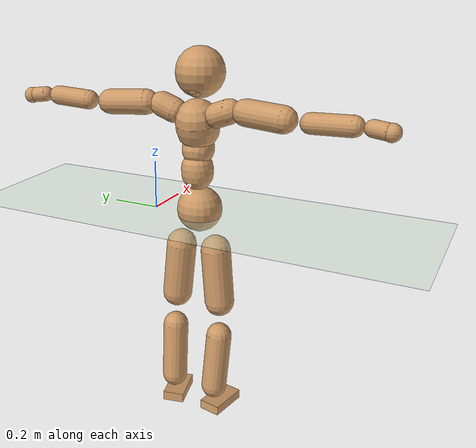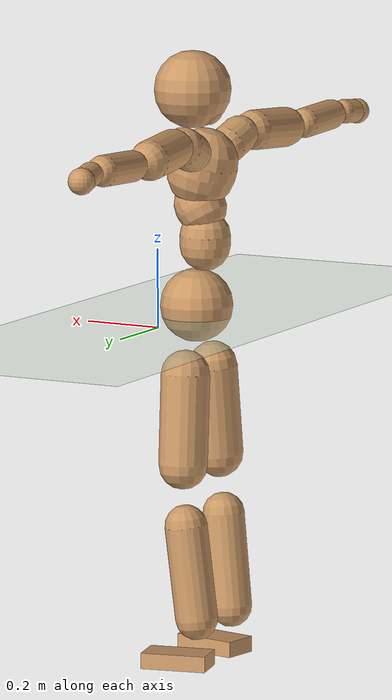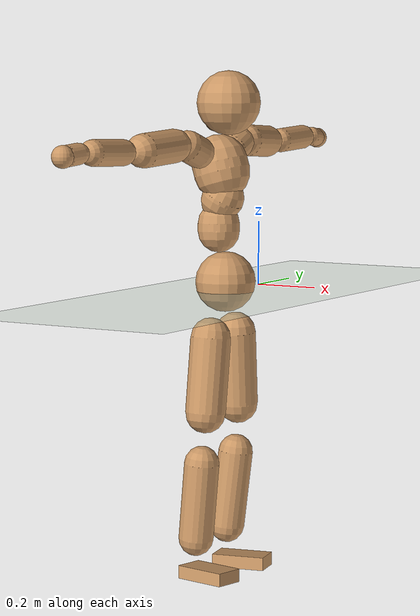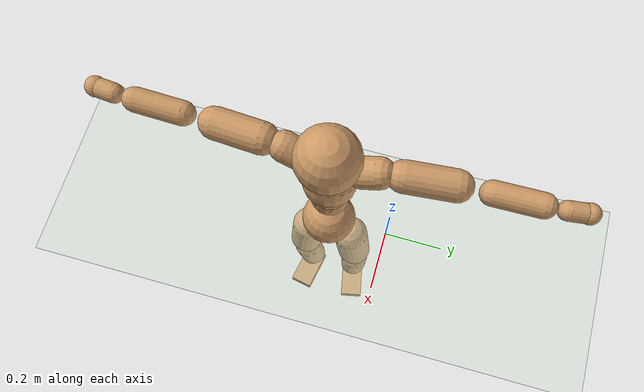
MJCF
<mujoco model="humanoid">
  <compiler coordinate="local"/>
  <default>
    <joint damping="0.0" armature="0.01" stiffness="0.0" limited="true"/>
    <geom conaffinity="1" condim="3" contype="7" margin="0.001" rgba="0.8 0.6 .4 1"/>
  </default>
  <asset>
    <texture type="skybox" builtin="gradient" rgb1=".4 .5 .6" rgb2="0 0 0" width="100" height="100"/>
    <texture builtin="flat" height="1278" mark="cross" markrgb="1 1 1" name="texgeom" random="0.01" rgb1="0.8 0.6 0.4" rgb2="0.8 0.6 0.4" type="cube" width="127"/>
    <texture builtin="checker" height="100" name="texplane" rgb1="0 0 0" rgb2="0.8 0.8 0.8" type="2d" width="100"/>
    <material name="MatPlane" reflectance="0.5" shininess="1" specular="1" texrepeat="60 60" texture="texplane"/>
    <material name="geom" texture="texgeom" texuniform="true"/>
  </asset>
  <worldbody>
    <light cutoff="100" diffuse="1 1 1" dir="-0 0 -1.3" directional="true" exponent="1" pos="0 0 1.3" specular=".1 .1 .1"/>
    <geom conaffinity="1" condim="3" name="floor" pos="0 0 0" rgba="0.8 0.9 0.8 1" size="100 100 .2" type="plane" material="MatPlane"/>
    <body name="Pelvis" pos="-0.0005 -0.206 0.0279">
      <freejoint name="Pelvis"/>
      <geom type="sphere" contype="1" conaffinity="1" density="500" size="0.0934" pos="0.0000 0.0000 0.0000" name="Pelvis"/>
      <body name="L_Hip" pos="-0.0083 0.0724 -0.0901">
        <joint name="L_Hip_x" type="hinge" pos="0 0 0" axis="1 0 0" stiffness="800" damping="80" armature="0.02" range="-180.0000 180.0000"/>
        <joint name="L_Hip_y" type="hinge" pos="0 0 0" axis="0 1 0" stiffness="800" damping="80" armature="0.02" range="-180.0000 180.0000"/>
        <joint name="L_Hip_z" type="hinge" pos="0 0 0" axis="0 0 1" stiffness="800" damping="80" armature="0.02" range="-180.0000 180.0000"/>
        <geom type="capsule" contype="1" conaffinity="1" density="500" fromto="-0.0011 0.0067 -0.0761 -0.0043 0.0267 -0.3043" size="0.0629" name="L_Hip"/>
        <body name="L_Knee" pos="-0.0054 0.0333 -0.3803">
          <joint name="L_Knee_x" type="hinge" pos="0 0 0" axis="1 0 0" stiffness="800" damping="80" armature="0.02" range="-180.0000 180.0000"/>
          <joint name="L_Knee_y" type="hinge" pos="0 0 0" axis="0 1 0" stiffness="800" damping="80" armature="0.02" range="-180.0000 180.0000"/>
          <joint name="L_Knee_z" type="hinge" pos="0 0 0" axis="0 0 1" stiffness="800" damping="80" armature="0.02" range="-180.0000 180.0000"/>
          <geom type="capsule" contype="1" conaffinity="1" density="500" fromto="-0.0090 -0.0023 -0.0801 -0.0359 -0.0093 -0.3204" size="0.054" name="L_Knee"/>
          <body name="L_Ankle" pos="-0.0449 -0.0116 -0.4005">
            <joint name="L_Ankle_x" type="hinge" pos="0 0 0" axis="1 0 0" stiffness="800" damping="80" armature="0.02" range="-180.0000 180.0000"/>
            <joint name="L_Ankle_y" type="hinge" pos="0 0 0" axis="0 1 0" stiffness="800" damping="80" armature="0.02" range="-180.0000 180.0000"/>
            <joint name="L_Ankle_z" type="hinge" pos="0 0 0" axis="0 0 1" stiffness="800" damping="80" armature="0.02" range="-180.0000 180.0000"/>
            <geom type="box" contype="1" conaffinity="1" density="500" pos="0.0587 0.0120 -0.0283" size="0.0843 0.0459 0.0205" quat="0.9949 0.0000 0.0000 0.1007" name="L_Ankle"/>
            <body name="L_Toe" pos="0.1174 0.024 -0.0567">
              <joint name="L_Toe_x" type="hinge" pos="0 0 0" axis="1 0 0" stiffness="500" damping="50" armature="0.02" range="-180.0000 180.0000"/>
              <joint name="L_Toe_y" type="hinge" pos="0 0 0" axis="0 1 0" stiffness="500" damping="50" armature="0.02" range="-180.0000 180.0000"/>
              <joint name="L_Toe_z" type="hinge" pos="0 0 0" axis="0 0 1" stiffness="500" damping="50" armature="0.02" range="-180.0000 180.0000"/>
              <geom type="box" contype="1" conaffinity="1" density="500" pos="0.0000 0.0000 0.0279" size="0.0009 0.0023 0.001" quat="0.9943 0.0000 0.0000 0.1071" name="L_Toe"/>
            </body>
          </body>
        </body>
      </body>
      <body name="R_Hip" pos="-0.005 -0.07 -0.0892">
        <joint name="R_Hip_x" type="hinge" pos="0 0 0" axis="1 0 0" stiffness="800" damping="80" armature="0.02" range="-180.0000 180.0000"/>
        <joint name="R_Hip_y" type="hinge" pos="0 0 0" axis="0 1 0" stiffness="800" damping="80" armature="0.02" range="-180.0000 180.0000"/>
        <joint name="R_Hip_z" type="hinge" pos="0 0 0" axis="0 0 1" stiffness="800" damping="80" armature="0.02" range="-180.0000 180.0000"/>
        <geom type="capsule" contype="1" conaffinity="1" density="500" fromto="-0.0016 -0.0078 -0.0774 -0.0065 -0.0311 -0.3094" size="0.0621" name="R_Hip"/>
        <body name="R_Knee" pos="-0.0081 -0.0389 -0.3868">
          <joint name="R_Knee_x" type="hinge" pos="0 0 0" axis="1 0 0" stiffness="800" damping="80" armature="0.02" range="-180.0000 180.0000"/>
          <joint name="R_Knee_y" type="hinge" pos="0 0 0" axis="0 1 0" stiffness="800" damping="80" armature="0.02" range="-180.0000 180.0000"/>
          <joint name="R_Knee_z" type="hinge" pos="0 0 0" axis="0 0 1" stiffness="800" damping="80" armature="0.02" range="-180.0000 180.0000"/>
          <geom type="capsule" contype="1" conaffinity="1" density="500" fromto="-0.0087 0.0028 -0.0801 -0.0347 0.0114 -0.3205" size="0.0542" name="R_Knee"/>
          <body name="R_Ankle" pos="-0.0433 0.0142 -0.4006">
            <joint name="R_Ankle_x" type="hinge" pos="0 0 0" axis="1 0 0" stiffness="800" damping="80" armature="0.02" range="-180.0000 180.0000"/>
            <joint name="R_Ankle_y" type="hinge" pos="0 0 0" axis="0 1 0" stiffness="800" damping="80" armature="0.02" range="-180.0000 180.0000"/>
            <joint name="R_Ankle_z" type="hinge" pos="0 0 0" axis="0 0 1" stiffness="800" damping="80" armature="0.02" range="-180.0000 180.0000"/>
            <geom type="box" contype="1" conaffinity="1" density="500" pos="0.0604 -0.0117 -0.0240" size="0.0852 0.0464 0.0203" quat="0.9954 0.0000 0.0000 -0.0956" name="R_Ankle"/>
            <body name="R_Toe" pos="0.1209 -0.0234 -0.048">
              <joint name="R_Toe_x" type="hinge" pos="0 0 0" axis="1 0 0" stiffness="500" damping="50" armature="0.02" range="-180.0000 180.0000"/>
              <joint name="R_Toe_y" type="hinge" pos="0 0 0" axis="0 1 0" stiffness="500" damping="50" armature="0.02" range="-180.0000 180.0000"/>
              <joint name="R_Toe_z" type="hinge" pos="0 0 0" axis="0 0 1" stiffness="500" damping="50" armature="0.02" range="-180.0000 180.0000"/>
              <geom type="box" contype="1" conaffinity="1" density="500" pos="0.0000 0.0000 0.0261" size="0.0009 0.0023 0.0011" quat="0.9963 0.0000 0.0000 -0.0862" name="R_Toe"/>
            </body>
          </body>
        </body>
      </body>
      <body name="Torso" pos="-0.0226 -0.0027 0.1037">
        <joint name="Torso_x" type="hinge" pos="0 0 0" axis="1 0 0" stiffness="1000" damping="100" armature="0.02" range="-180.0000 180.0000"/>
        <joint name="Torso_y" type="hinge" pos="0 0 0" axis="0 1 0" stiffness="1000" damping="100" armature="0.02" range="-180.0000 180.0000"/>
        <joint name="Torso_z" type="hinge" pos="0 0 0" axis="0 0 1" stiffness="1000" damping="100" armature="0.02" range="-180.0000 180.0000"/>
        <geom type="capsule" contype="1" conaffinity="1" density="500" fromto="-0.0016 0.0021 0.0760 -0.0011 0.0014 0.0507" size="0.064542" name="Torso"/>
        <body name="Spine" pos="-0.0027 0.0035 0.1267">
          <joint name="Spine_x" type="hinge" pos="0 0 0" axis="1 0 0" stiffness="1000" damping="100" armature="0.02" range="-180.0000 180.0000"/>
          <joint name="Spine_y" type="hinge" pos="0 0 0" axis="0 1 0" stiffness="1000" damping="100" armature="0.02" range="-180.0000 180.0000"/>
          <joint name="Spine_z" type="hinge" pos="0 0 0" axis="0 0 1" stiffness="1000" damping="100" armature="0.02" range="-180.0000 180.0000"/>
          <geom type="capsule" contype="1" conaffinity="1" density="500" fromto="0.0163 0.0011 0.0291 0.0108 0.0008 0.0194" size="0.064821" name="Spine"/>
          <body name="Chest" pos="0.0271 0.0019 0.0486">
            <joint name="Chest_x" type="hinge" pos="0 0 0" axis="1 0 0" stiffness="1000" damping="100" armature="0.02" range="-180.0000 180.0000"/>
            <joint name="Chest_y" type="hinge" pos="0 0 0" axis="0 1 0" stiffness="1000" damping="100" armature="0.02" range="-180.0000 180.0000"/>
            <joint name="Chest_z" type="hinge" pos="0 0 0" axis="0 0 1" stiffness="1000" damping="100" armature="0.02" range="-180.0000 180.0000"/>
            <geom type="capsule" contype="1" conaffinity="1" density="500" fromto="-0.0244 -0.0008 0.0879 -0.0163 -0.0005 0.0586" size="0.087141" name="Chest"/>
            <body name="Neck" pos="-0.0453 -0.0021 0.2078">
              <joint name="Neck_x" type="hinge" pos="0 0 0" axis="1 0 0" stiffness="500" damping="50" armature="0.02" range="-180.0000 180.0000"/>
              <joint name="Neck_y" type="hinge" pos="0 0 0" axis="0 1 0" stiffness="500" damping="50" armature="0.02" range="-180.0000 180.0000"/>
              <joint name="Neck_z" type="hinge" pos="0 0 0" axis="0 0 1" stiffness="500" damping="50" armature="0.02" range="-180.0000 180.0000"/>
              <geom type="capsule" contype="1" conaffinity="1" density="500" fromto="0.0103 0.0008 0.0127 0.0413 0.0031 0.0507" size="0.038037" name="Neck"/>
              <body name="Head" pos="0.0517 0.0038 0.0633">
                <joint name="Head_x" type="hinge" pos="0 0 0" axis="1 0 0" stiffness="500" damping="50" armature="0.02" range="-180.0000 180.0000"/>
                <joint name="Head_y" type="hinge" pos="0 0 0" axis="0 1 0" stiffness="500" damping="50" armature="0.02" range="-180.0000 180.0000"/>
                <joint name="Head_z" type="hinge" pos="0 0 0" axis="0 0 1" stiffness="500" damping="50" armature="0.02" range="-180.0000 180.0000"/>
                <geom type="sphere" contype="1" conaffinity="1" density="500" size="0.0985" pos="0.0000 0.0000 0.0000" name="Head"/>
              </body>
            </body>
            <body name="L_Thorax" pos="-0.0358 0.0748 0.1169">
              <joint name="L_Thorax_x" type="hinge" pos="0 0 0" axis="1 0 0" stiffness="500" damping="50" armature="0.02" range="-180.0000 180.0000"/>
              <joint name="L_Thorax_y" type="hinge" pos="0 0 0" axis="0 1 0" stiffness="500" damping="50" armature="0.02" range="-180.0000 180.0000"/>
              <joint name="L_Thorax_z" type="hinge" pos="0 0 0" axis="0 0 1" stiffness="500" damping="50" armature="0.02" range="-180.0000 180.0000"/>
              <geom type="capsule" contype="1" conaffinity="1" density="500" fromto="-0.0014 0.0169 0.0067 -0.0055 0.0676 0.0270" size="0.0497" name="L_Thorax"/>
              <body name="L_Shoulder" pos="-0.0069 0.0846 0.0337">
                <joint name="L_Shoulder_x" type="hinge" pos="0 0 0" axis="1 0 0" stiffness="500" damping="50" armature="0.02" range="-720.0000 720.0000"/>
                <joint name="L_Shoulder_y" type="hinge" pos="0 0 0" axis="0 1 0" stiffness="500" damping="50" armature="0.02" range="-720.0000 720.0000"/>
                <joint name="L_Shoulder_z" type="hinge" pos="0 0 0" axis="0 0 1" stiffness="500" damping="50" armature="0.02" range="-720.0000 720.0000"/>
                <geom type="capsule" contype="1" conaffinity="1" density="500" fromto="-0.0058 0.0518 -0.0030 -0.0230 0.2074 -0.0120" size="0.0502" name="L_Shoulder"/>
                <body name="L_Elbow" pos="-0.0288 0.2592 -0.015">
                  <joint name="L_Elbow_x" type="hinge" pos="0 0 0" axis="1 0 0" stiffness="500" damping="50" armature="0.02" range="-720.0000 720.0000"/>
                  <joint name="L_Elbow_y" type="hinge" pos="0 0 0" axis="0 1 0" stiffness="500" damping="50" armature="0.02" range="-720.0000 720.0000"/>
                  <joint name="L_Elbow_z" type="hinge" pos="0 0 0" axis="0 0 1" stiffness="500" damping="50" armature="0.02" range="-720.0000 720.0000"/>
                  <geom type="capsule" contype="1" conaffinity="1" density="500" fromto="0.0000 0.0495 0.0021 0.0001 0.1981 0.0082" size="0.0389" name="L_Elbow"/>
                  <body name="L_Wrist" pos="0.0001 0.2476 0.0103">
                    <joint name="L_Wrist_x" type="hinge" pos="0 0 0" axis="1 0 0" stiffness="300" damping="30" armature="0.02" range="-180.0000 180.0000"/>
                    <joint name="L_Wrist_y" type="hinge" pos="0 0 0" axis="0 1 0" stiffness="300" damping="30" armature="0.02" range="-180.0000 180.0000"/>
                    <joint name="L_Wrist_z" type="hinge" pos="0 0 0" axis="0 0 1" stiffness="300" damping="30" armature="0.02" range="-180.0000 180.0000"/>
                    <geom type="capsule" contype="1" conaffinity="1" density="500" fromto="-0.0027 0.0163 -0.0020 -0.0109 0.0650 -0.0080" size="0.0305" name="L_Wrist"/>
                    <body name="L_Hand" pos="-0.0136 0.0813 -0.01">
                      <joint name="L_Hand_x" type="hinge" pos="0 0 0" axis="1 0 0" stiffness="300" damping="30" armature="0.02" range="-180.0000 180.0000"/>
                      <joint name="L_Hand_y" type="hinge" pos="0 0 0" axis="0 1 0" stiffness="300" damping="30" armature="0.02" range="-180.0000 180.0000"/>
                      <joint name="L_Hand_z" type="hinge" pos="0 0 0" axis="0 0 1" stiffness="300" damping="30" armature="0.02" range="-180.0000 180.0000"/>
                      <geom type="sphere" contype="1" conaffinity="1" density="500" size="0.0327" pos="0.0000 0.0000 0.0000" name="L_Hand"/>
                    </body>
                  </body>
                </body>
              </body>
            </body>
            <body name="R_Thorax" pos="-0.041 -0.0765 0.1148">
              <joint name="R_Thorax_x" type="hinge" pos="0 0 0" axis="1 0 0" stiffness="500" damping="50" armature="0.02" range="-180.0000 180.0000"/>
              <joint name="R_Thorax_y" type="hinge" pos="0 0 0" axis="0 1 0" stiffness="500" damping="50" armature="0.02" range="-180.0000 180.0000"/>
              <joint name="R_Thorax_z" type="hinge" pos="0 0 0" axis="0 0 1" stiffness="500" damping="50" armature="0.02" range="-180.0000 180.0000"/>
              <geom type="capsule" contype="1" conaffinity="1" density="500" fromto="-0.0019 -0.0178 0.0069 -0.0075 -0.0710 0.0275" size="0.0487" name="R_Thorax"/>
              <body name="R_Shoulder" pos="-0.0093 -0.0888 0.0343">
                <joint name="R_Shoulder_x" type="hinge" pos="0 0 0" axis="1 0 0" stiffness="500" damping="50" armature="0.02" range="-720.0000 720.0000"/>
                <joint name="R_Shoulder_y" type="hinge" pos="0 0 0" axis="0 1 0" stiffness="500" damping="50" armature="0.02" range="-720.0000 720.0000"/>
                <joint name="R_Shoulder_z" type="hinge" pos="0 0 0" axis="0 0 1" stiffness="500" damping="50" armature="0.02" range="-720.0000 720.0000"/>
                <geom type="capsule" contype="1" conaffinity="1" density="500" fromto="-0.0043 -0.0509 -0.0030 -0.0173 -0.2034 -0.0119" size="0.0515" name="R_Shoulder"/>
                <body name="R_Elbow" pos="-0.0217 -0.2543 -0.0149">
                  <joint name="R_Elbow_x" type="hinge" pos="0 0 0" axis="1 0 0" stiffness="500" damping="50" armature="0.02" range="-720.0000 720.0000"/>
                  <joint name="R_Elbow_y" type="hinge" pos="0 0 0" axis="0 1 0" stiffness="500" damping="50" armature="0.02" range="-720.0000 720.0000"/>
                  <joint name="R_Elbow_z" type="hinge" pos="0 0 0" axis="0 0 1" stiffness="500" damping="50" armature="0.02" range="-720.0000 720.0000"/>
                  <geom type="capsule" contype="1" conaffinity="1" density="500" fromto="-0.0007 -0.0510 0.0018 -0.0030 -0.2038 0.0072" size="0.0391" name="R_Elbow"/>
                  <body name="R_Wrist" pos="-0.0037 -0.2548 0.0091">
                    <joint name="R_Wrist_x" type="hinge" pos="0 0 0" axis="1 0 0" stiffness="300" damping="30" armature="0.02" range="-180.0000 180.0000"/>
                    <joint name="R_Wrist_y" type="hinge" pos="0 0 0" axis="0 1 0" stiffness="300" damping="30" armature="0.02" range="-180.0000 180.0000"/>
                    <joint name="R_Wrist_z" type="hinge" pos="0 0 0" axis="0 0 1" stiffness="300" damping="30" armature="0.02" range="-180.0000 180.0000"/>
                    <geom type="capsule" contype="1" conaffinity="1" density="500" fromto="-0.0021 -0.0164 -0.0015 -0.0086 -0.0657 -0.0060" size="0.0313" name="R_Wrist"/>
                    <body name="R_Hand" pos="-0.0107 -0.0821 -0.0074">
                      <joint name="R_Hand_x" type="hinge" pos="0 0 0" axis="1 0 0" stiffness="300" damping="30" armature="0.02" range="-180.0000 180.0000"/>
                      <joint name="R_Hand_y" type="hinge" pos="0 0 0" axis="0 1 0" stiffness="300" damping="30" armature="0.02" range="-180.0000 180.0000"/>
                      <joint name="R_Hand_z" type="hinge" pos="0 0 0" axis="0 0 1" stiffness="300" damping="30" armature="0.02" range="-180.0000 180.0000"/>
                      <geom type="sphere" contype="1" conaffinity="1" density="500" size="0.0330" pos="0.0000 0.0000 0.0000" name="R_Hand"/>
                    </body>
                  </body>
                </body>
              </body>
            </body>
          </body>
        </body>
      </body>
    </body>
  </worldbody>
  <actuator>
    <motor name="L_Hip_x" joint="L_Hip_x" gear="500"/>
    <motor name="L_Hip_y" joint="L_Hip_y" gear="500"/>
    <motor name="L_Hip_z" joint="L_Hip_z" gear="500"/>
    <motor name="L_Knee_x" joint="L_Knee_x" gear="500"/>
    <motor name="L_Knee_y" joint="L_Knee_y" gear="500"/>
    <motor name="L_Knee_z" joint="L_Knee_z" gear="500"/>
    <motor name="L_Ankle_x" joint="L_Ankle_x" gear="500"/>
    <motor name="L_Ankle_y" joint="L_Ankle_y" gear="500"/>
    <motor name="L_Ankle_z" joint="L_Ankle_z" gear="500"/>
    <motor name="L_Toe_x" joint="L_Toe_x" gear="500"/>
    <motor name="L_Toe_y" joint="L_Toe_y" gear="500"/>
    <motor name="L_Toe_z" joint="L_Toe_z" gear="500"/>
    <motor name="R_Hip_x" joint="R_Hip_x" gear="500"/>
    <motor name="R_Hip_y" joint="R_Hip_y" gear="500"/>
    <motor name="R_Hip_z" joint="R_Hip_z" gear="500"/>
    <motor name="R_Knee_x" joint="R_Knee_x" gear="500"/>
    <motor name="R_Knee_y" joint="R_Knee_y" gear="500"/>
    <motor name="R_Knee_z" joint="R_Knee_z" gear="500"/>
    <motor name="R_Ankle_x" joint="R_Ankle_x" gear="500"/>
    <motor name="R_Ankle_y" joint="R_Ankle_y" gear="500"/>
    <motor name="R_Ankle_z" joint="R_Ankle_z" gear="500"/>
    <motor name="R_Toe_x" joint="R_Toe_x" gear="500"/>
    <motor name="R_Toe_y" joint="R_Toe_y" gear="500"/>
    <motor name="R_Toe_z" joint="R_Toe_z" gear="500"/>
    <motor name="Torso_x" joint="Torso_x" gear="500"/>
    <motor name="Torso_y" joint="Torso_y" gear="500"/>
    <motor name="Torso_z" joint="Torso_z" gear="500"/>
    <motor name="Spine_x" joint="Spine_x" gear="500"/>
    <motor name="Spine_y" joint="Spine_y" gear="500"/>
    <motor name="Spine_z" joint="Spine_z" gear="500"/>
    <motor name="Chest_x" joint="Chest_x" gear="500"/>
    <motor name="Chest_y" joint="Chest_y" gear="500"/>
    <motor name="Chest_z" joint="Chest_z" gear="500"/>
    <motor name="Neck_x" joint="Neck_x" gear="500"/>
    <motor name="Neck_y" joint="Neck_y" gear="500"/>
    <motor name="Neck_z" joint="Neck_z" gear="500"/>
    <motor name="Head_x" joint="Head_x" gear="500"/>
    <motor name="Head_y" joint="Head_y" gear="500"/>
    <motor name="Head_z" joint="Head_z" gear="500"/>
    <motor name="L_Thorax_x" joint="L_Thorax_x" gear="500"/>
    <motor name="L_Thorax_y" joint="L_Thorax_y" gear="500"/>
    <motor name="L_Thorax_z" joint="L_Thorax_z" gear="500"/>
    <motor name="L_Shoulder_x" joint="L_Shoulder_x" gear="500"/>
    <motor name="L_Shoulder_y" joint="L_Shoulder_y" gear="500"/>
    <motor name="L_Shoulder_z" joint="L_Shoulder_z" gear="500"/>
    <motor name="L_Elbow_x" joint="L_Elbow_x" gear="500"/>
    <motor name="L_Elbow_y" joint="L_Elbow_y" gear="500"/>
    <motor name="L_Elbow_z" joint="L_Elbow_z" gear="500"/>
    <motor name="L_Wrist_x" joint="L_Wrist_x" gear="500"/>
    <motor name="L_Wrist_y" joint="L_Wrist_y" gear="500"/>
    <motor name="L_Wrist_z" joint="L_Wrist_z" gear="500"/>
    <motor name="L_Hand_x" joint="L_Hand_x" gear="500"/>
    <motor name="L_Hand_y" joint="L_Hand_y" gear="500"/>
    <motor name="L_Hand_z" joint="L_Hand_z" gear="500"/>
    <motor name="R_Thorax_x" joint="R_Thorax_x" gear="500"/>
    <motor name="R_Thorax_y" joint="R_Thorax_y" gear="500"/>
    <motor name="R_Thorax_z" joint="R_Thorax_z" gear="500"/>
    <motor name="R_Shoulder_x" joint="R_Shoulder_x" gear="500"/>
    <motor name="R_Shoulder_y" joint="R_Shoulder_y" gear="500"/>
    <motor name="R_Shoulder_z" joint="R_Shoulder_z" gear="500"/>
    <motor name="R_Elbow_x" joint="R_Elbow_x" gear="500"/>
    <motor name="R_Elbow_y" joint="R_Elbow_y" gear="500"/>
    <motor name="R_Elbow_z" joint="R_Elbow_z" gear="500"/>
    <motor name="R_Wrist_x" joint="R_Wrist_x" gear="500"/>
    <motor name="R_Wrist_y" joint="R_Wrist_y" gear="500"/>
    <motor name="R_Wrist_z" joint="R_Wrist_z" gear="500"/>
    <motor name="R_Hand_x" joint="R_Hand_x" gear="500"/>
    <motor name="R_Hand_y" joint="R_Hand_y" gear="500"/>
    <motor name="R_Hand_z" joint="R_Hand_z" gear="500"/>
  </actuator>
  <contact>
    <exclude body1="Torso" body2="Chest"/>
    <exclude body1="Head" body2="Chest"/>
    <exclude body1="R_Knee" body2="R_Toe"/>
    <exclude body1="R_Knee" body2="L_Ankle"/>
    <exclude body1="R_Knee" body2="L_Toe"/>
    <exclude body1="L_Knee" body2="L_Toe"/>
    <exclude body1="L_Knee" body2="R_Ankle"/>
    <exclude body1="L_Knee" body2="R_Toe"/>
    <exclude body1="L_Shoulder" body2="Chest"/>
    <exclude body1="R_Shoulder" body2="Chest"/>
  </contact>
  <sensor/>
  <size njmax="700" nconmax="700"/>
</mujoco>
